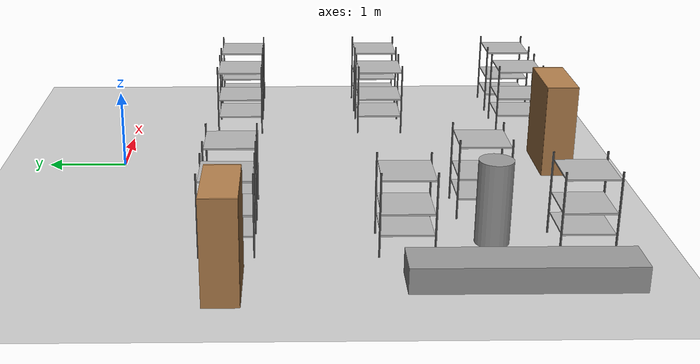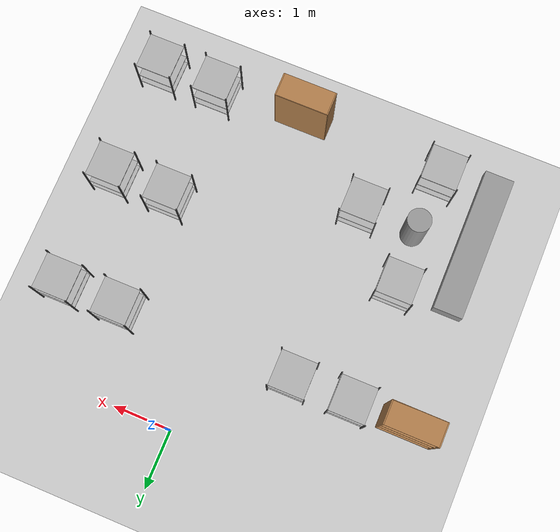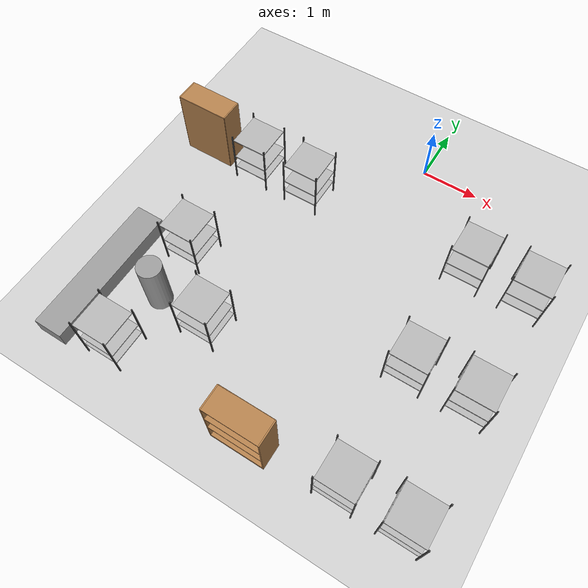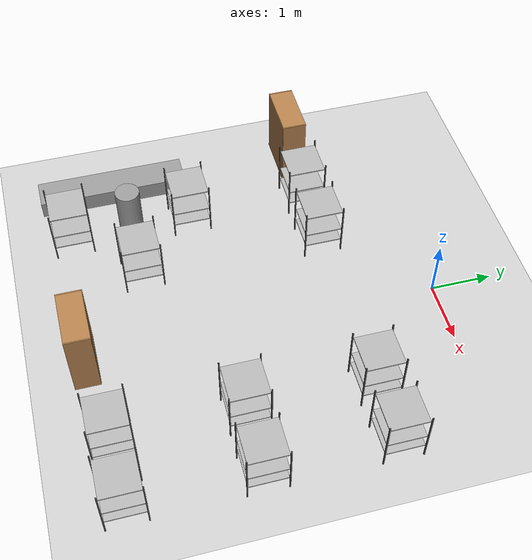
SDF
<sdf version="1.7">
 <world name="default">
  <model name="ground_plane">
   <static>1</static>
   <link name="link">
    <collision name="collision">
     <geometry><plane><normal>0 0 1</normal><size>100 100</size></plane></geometry>
     <surface><friction><ode><mu>100</mu><mu2>50</mu2></ode></friction></surface>
    </collision>
    <visual name="visual">
     <cast_shadows>0</cast_shadows>
     <geometry><plane><normal>0 0 1</normal><size>100 100</size></plane></geometry>
     <material>
      <script><uri>file://media/materials/scripts/gazebo.material</uri><name>Gazebo/Grey</name></script>
     </material>
    </visual>
   </link>
  </model>
  <model name="simple_shelf_20">
   <link name="link">
    <visual name="bottom_shelf_visual">
     <geometry><box><size>0.6 0.6 0.02</size></box></geometry>
     <pose>0 0 0.25 0 -0 0</pose>
     <material><ambient>0.6 0.6 0.6 1</ambient><diffuse>0.7 0.7 0.7 1</diffuse></material>
    </visual>
    <collision name="bottom_shelf_collision">
     <geometry><box><size>0.6 0.6 0.02</size></box></geometry>
     <pose>0 0 0.25 0 -0 0</pose>
    </collision>
    <visual name="middle_shelf_visual">
     <geometry><box><size>0.6 0.6 0.02</size></box></geometry>
     <pose>0 0 0.5 0 -0 0</pose>
     <material><ambient>0.6 0.6 0.6 1</ambient><diffuse>0.7 0.7 0.7 1</diffuse></material>
    </visual>
    <collision name="middle_shelf_collision">
     <geometry><box><size>0.6 0.6 0.02</size></box></geometry>
     <pose>0 0 0.5 0 -0 0</pose>
    </collision>
    <visual name="top_shelf_visual">
     <geometry><box><size>0.6 0.6 0.02</size></box></geometry>
     <pose>0 0 0.9 0 -0 0</pose>
     <material><ambient>0.6 0.6 0.6 1</ambient><diffuse>0.7 0.7 0.7 1</diffuse></material>
    </visual>
    <collision name="top_shelf_collision">
     <geometry><box><size>0.6 0.6 0.02</size></box></geometry>
     <pose>0 0 0.9 0 -0 0</pose>
    </collision>
    <visual name="left_support_visual">
     <geometry><box><size>0.02 0.02 1</size></box></geometry>
     <pose>-0.31 -0.31 0.5 0 -0 0</pose>
     <material><ambient>0.3 0.3 0.3 1</ambient><diffuse>0.3 0.3 0.3 1</diffuse></material>
    </visual>
    <collision name="left_support_collision">
     <geometry><box><size>0.02 0.02 1</size></box></geometry>
     <pose>-0.31 -0.31 0.5 0 -0 0</pose>
    </collision>
    <visual name="right_support_visual">
     <geometry><box><size>0.02 0.02 1</size></box></geometry>
     <pose>0.31 -0.31 0.5 0 -0 0</pose>
     <material><ambient>0.3 0.3 0.3 1</ambient><diffuse>0.3 0.3 0.3 1</diffuse></material>
    </visual>
    <collision name="right_support_collision">
     <geometry><box><size>0.02 0.02 1</size></box></geometry>
     <pose>0.31 -0.31 0.5 0 -0 0</pose>
    </collision>
    <visual name="front_left_support_visual">
     <geometry><box><size>0.02 0.02 1</size></box></geometry>
     <pose>-0.31 0.31 0.5 0 -0 0</pose>
     <material><ambient>0.3 0.3 0.3 1</ambient><diffuse>0.3 0.3 0.3 1</diffuse></material>
    </visual>
    <collision name="front_left_support_collision">
     <geometry><box><size>0.02 0.02 1</size></box></geometry>
     <pose>-0.31 0.31 0.5 0 -0 0</pose>
    </collision>
    <visual name="front_right_support_visual">
     <geometry><box><size>0.02 0.02 1</size></box></geometry>
     <pose>0.31 0.31 0.5 0 -0 0</pose>
     <material><ambient>0.3 0.3 0.3 1</ambient><diffuse>0.3 0.3 0.3 1</diffuse></material>
    </visual>
    <collision name="front_right_support_collision">
     <geometry><box><size>0.02 0.02 1</size></box></geometry>
     <pose>0.31 0.31 0.5 0 -0 0</pose>
    </collision>
    <inertial>
     <inertia><ixx>1</ixx><ixy>0</ixy><ixz>0</ixz><iyy>1</iyy><iyz>0</iyz><izz>1</izz></inertia>
     <mass>1</mass>
    </inertial>
   </link>
   <pose>-2.5 -1.5 -1e-06 -1e-06 -1e-06 0</pose>
  </model>
  <model name="simple_shelf_21">
   <link name="link">
    <visual name="bottom_shelf_visual">
     <geometry><box><size>0.6 0.6 0.02</size></box></geometry>
     <pose>0 0 0.25 0 -0 0</pose>
     <material><ambient>0.6 0.6 0.6 1</ambient><diffuse>0.7 0.7 0.7 1</diffuse></material>
    </visual>
    <collision name="bottom_shelf_collision">
     <geometry><box><size>0.6 0.6 0.02</size></box></geometry>
     <pose>0 0 0.25 0 -0 0</pose>
    </collision>
    <visual name="middle_shelf_visual">
     <geometry><box><size>0.6 0.6 0.02</size></box></geometry>
     <pose>0 0 0.5 0 -0 0</pose>
     <material><ambient>0.6 0.6 0.6 1</ambient><diffuse>0.7 0.7 0.7 1</diffuse></material>
    </visual>
    <collision name="middle_shelf_collision">
     <geometry><box><size>0.6 0.6 0.02</size></box></geometry>
     <pose>0 0 0.5 0 -0 0</pose>
    </collision>
    <visual name="top_shelf_visual">
     <geometry><box><size>0.6 0.6 0.02</size></box></geometry>
     <pose>0 0 0.9 0 -0 0</pose>
     <material><ambient>0.6 0.6 0.6 1</ambient><diffuse>0.7 0.7 0.7 1</diffuse></material>
    </visual>
    <collision name="top_shelf_collision">
     <geometry><box><size>0.6 0.6 0.02</size></box></geometry>
     <pose>0 0 0.9 0 -0 0</pose>
    </collision>
    <visual name="left_support_visual">
     <geometry><box><size>0.02 0.02 1</size></box></geometry>
     <pose>-0.31 -0.31 0.5 0 -0 0</pose>
     <material><ambient>0.3 0.3 0.3 1</ambient><diffuse>0.3 0.3 0.3 1</diffuse></material>
    </visual>
    <collision name="left_support_collision">
     <geometry><box><size>0.02 0.02 1</size></box></geometry>
     <pose>-0.31 -0.31 0.5 0 -0 0</pose>
    </collision>
    <visual name="right_support_visual">
     <geometry><box><size>0.02 0.02 1</size></box></geometry>
     <pose>0.31 -0.31 0.5 0 -0 0</pose>
     <material><ambient>0.3 0.3 0.3 1</ambient><diffuse>0.3 0.3 0.3 1</diffuse></material>
    </visual>
    <collision name="right_support_collision">
     <geometry><box><size>0.02 0.02 1</size></box></geometry>
     <pose>0.31 -0.31 0.5 0 -0 0</pose>
    </collision>
    <visual name="front_left_support_visual">
     <geometry><box><size>0.02 0.02 1</size></box></geometry>
     <pose>-0.31 0.31 0.5 0 -0 0</pose>
     <material><ambient>0.3 0.3 0.3 1</ambient><diffuse>0.3 0.3 0.3 1</diffuse></material>
    </visual>
    <collision name="front_left_support_collision">
     <geometry><box><size>0.02 0.02 1</size></box></geometry>
     <pose>-0.31 0.31 0.5 0 -0 0</pose>
    </collision>
    <visual name="front_right_support_visual">
     <geometry><box><size>0.02 0.02 1</size></box></geometry>
     <pose>0.31 0.31 0.5 0 -0 0</pose>
     <material><ambient>0.3 0.3 0.3 1</ambient><diffuse>0.3 0.3 0.3 1</diffuse></material>
    </visual>
    <collision name="front_right_support_collision">
     <geometry><box><size>0.02 0.02 1</size></box></geometry>
     <pose>0.31 0.31 0.5 0 -0 0</pose>
    </collision>
    <inertial>
     <inertia><ixx>1</ixx><ixy>0</ixy><ixz>0</ixz><iyy>1</iyy><iyz>0</iyz><izz>1</izz></inertia>
     <mass>1</mass>
    </inertial>
   </link>
   <pose>-1.5 -1.5 -1e-06 -1e-06 -1e-06 0</pose>
  </model>
  <model name="simple_shelf_22">
   <link name="link">
    <visual name="bottom_shelf_visual">
     <geometry><box><size>0.6 0.6 0.02</size></box></geometry>
     <pose>0 0 0.25 0 -0 0</pose>
     <material><ambient>0.6 0.6 0.6 1</ambient><diffuse>0.7 0.7 0.7 1</diffuse></material>
    </visual>
    <collision name="bottom_shelf_collision">
     <geometry><box><size>0.6 0.6 0.02</size></box></geometry>
     <pose>0 0 0.25 0 -0 0</pose>
    </collision>
    <visual name="middle_shelf_visual">
     <geometry><box><size>0.6 0.6 0.02</size></box></geometry>
     <pose>0 0 0.5 0 -0 0</pose>
     <material><ambient>0.6 0.6 0.6 1</ambient><diffuse>0.7 0.7 0.7 1</diffuse></material>
    </visual>
    <collision name="middle_shelf_collision">
     <geometry><box><size>0.6 0.6 0.02</size></box></geometry>
     <pose>0 0 0.5 0 -0 0</pose>
    </collision>
    <visual name="top_shelf_visual">
     <geometry><box><size>0.6 0.6 0.02</size></box></geometry>
     <pose>0 0 0.9 0 -0 0</pose>
     <material><ambient>0.6 0.6 0.6 1</ambient><diffuse>0.7 0.7 0.7 1</diffuse></material>
    </visual>
    <collision name="top_shelf_collision">
     <geometry><box><size>0.6 0.6 0.02</size></box></geometry>
     <pose>0 0 0.9 0 -0 0</pose>
    </collision>
    <visual name="left_support_visual">
     <geometry><box><size>0.02 0.02 1</size></box></geometry>
     <pose>-0.31 -0.31 0.5 0 -0 0</pose>
     <material><ambient>0.3 0.3 0.3 1</ambient><diffuse>0.3 0.3 0.3 1</diffuse></material>
    </visual>
    <collision name="left_support_collision">
     <geometry><box><size>0.02 0.02 1</size></box></geometry>
     <pose>-0.31 -0.31 0.5 0 -0 0</pose>
    </collision>
    <visual name="right_support_visual">
     <geometry><box><size>0.02 0.02 1</size></box></geometry>
     <pose>0.31 -0.31 0.5 0 -0 0</pose>
     <material><ambient>0.3 0.3 0.3 1</ambient><diffuse>0.3 0.3 0.3 1</diffuse></material>
    </visual>
    <collision name="right_support_collision">
     <geometry><box><size>0.02 0.02 1</size></box></geometry>
     <pose>0.31 -0.31 0.5 0 -0 0</pose>
    </collision>
    <visual name="front_left_support_visual">
     <geometry><box><size>0.02 0.02 1</size></box></geometry>
     <pose>-0.31 0.31 0.5 0 -0 0</pose>
     <material><ambient>0.3 0.3 0.3 1</ambient><diffuse>0.3 0.3 0.3 1</diffuse></material>
    </visual>
    <collision name="front_left_support_collision">
     <geometry><box><size>0.02 0.02 1</size></box></geometry>
     <pose>-0.31 0.31 0.5 0 -0 0</pose>
    </collision>
    <visual name="front_right_support_visual">
     <geometry><box><size>0.02 0.02 1</size></box></geometry>
     <pose>0.31 0.31 0.5 0 -0 0</pose>
     <material><ambient>0.3 0.3 0.3 1</ambient><diffuse>0.3 0.3 0.3 1</diffuse></material>
    </visual>
    <collision name="front_right_support_collision">
     <geometry><box><size>0.02 0.02 1</size></box></geometry>
     <pose>0.31 0.31 0.5 0 -0 0</pose>
    </collision>
    <inertial>
     <inertia><ixx>1</ixx><ixy>0</ixy><ixz>0</ixz><iyy>1</iyy><iyz>0</iyz><izz>1</izz></inertia>
     <mass>1</mass>
    </inertial>
   </link>
   <pose>1.5 -1.5 -1e-06 -1e-06 -1e-06 0</pose>
  </model>
  <model name="simple_shelf_23">
   <link name="link">
    <visual name="bottom_shelf_visual">
     <geometry><box><size>0.6 0.6 0.02</size></box></geometry>
     <pose>0 0 0.25 0 -0 0</pose>
     <material><ambient>0.6 0.6 0.6 1</ambient><diffuse>0.7 0.7 0.7 1</diffuse></material>
    </visual>
    <collision name="bottom_shelf_collision">
     <geometry><box><size>0.6 0.6 0.02</size></box></geometry>
     <pose>0 0 0.25 0 -0 0</pose>
    </collision>
    <visual name="middle_shelf_visual">
     <geometry><box><size>0.6 0.6 0.02</size></box></geometry>
     <pose>0 0 0.5 0 -0 0</pose>
     <material><ambient>0.6 0.6 0.6 1</ambient><diffuse>0.7 0.7 0.7 1</diffuse></material>
    </visual>
    <collision name="middle_shelf_collision">
     <geometry><box><size>0.6 0.6 0.02</size></box></geometry>
     <pose>0 0 0.5 0 -0 0</pose>
    </collision>
    <visual name="top_shelf_visual">
     <geometry><box><size>0.6 0.6 0.02</size></box></geometry>
     <pose>0 0 0.9 0 -0 0</pose>
     <material><ambient>0.6 0.6 0.6 1</ambient><diffuse>0.7 0.7 0.7 1</diffuse></material>
    </visual>
    <collision name="top_shelf_collision">
     <geometry><box><size>0.6 0.6 0.02</size></box></geometry>
     <pose>0 0 0.9 0 -0 0</pose>
    </collision>
    <visual name="left_support_visual">
     <geometry><box><size>0.02 0.02 1</size></box></geometry>
     <pose>-0.31 -0.31 0.5 0 -0 0</pose>
     <material><ambient>0.3 0.3 0.3 1</ambient><diffuse>0.3 0.3 0.3 1</diffuse></material>
    </visual>
    <collision name="left_support_collision">
     <geometry><box><size>0.02 0.02 1</size></box></geometry>
     <pose>-0.31 -0.31 0.5 0 -0 0</pose>
    </collision>
    <visual name="right_support_visual">
     <geometry><box><size>0.02 0.02 1</size></box></geometry>
     <pose>0.31 -0.31 0.5 0 -0 0</pose>
     <material><ambient>0.3 0.3 0.3 1</ambient><diffuse>0.3 0.3 0.3 1</diffuse></material>
    </visual>
    <collision name="right_support_collision">
     <geometry><box><size>0.02 0.02 1</size></box></geometry>
     <pose>0.31 -0.31 0.5 0 -0 0</pose>
    </collision>
    <visual name="front_left_support_visual">
     <geometry><box><size>0.02 0.02 1</size></box></geometry>
     <pose>-0.31 0.31 0.5 0 -0 0</pose>
     <material><ambient>0.3 0.3 0.3 1</ambient><diffuse>0.3 0.3 0.3 1</diffuse></material>
    </visual>
    <collision name="front_left_support_collision">
     <geometry><box><size>0.02 0.02 1</size></box></geometry>
     <pose>-0.31 0.31 0.5 0 -0 0</pose>
    </collision>
    <visual name="front_right_support_visual">
     <geometry><box><size>0.02 0.02 1</size></box></geometry>
     <pose>0.31 0.31 0.5 0 -0 0</pose>
     <material><ambient>0.3 0.3 0.3 1</ambient><diffuse>0.3 0.3 0.3 1</diffuse></material>
    </visual>
    <collision name="front_right_support_collision">
     <geometry><box><size>0.02 0.02 1</size></box></geometry>
     <pose>0.31 0.31 0.5 0 -0 0</pose>
    </collision>
    <inertial>
     <inertia><ixx>1</ixx><ixy>0</ixy><ixz>0</ixz><iyy>1</iyy><iyz>0</iyz><izz>1</izz></inertia>
     <mass>1</mass>
    </inertial>
   </link>
   <pose>2.5 -1.5 -1e-06 -1e-06 -1e-06 0</pose>
  </model>
  <model name="unit_cylinder">
   <link name="link">
    <inertial>
     <mass>1</mass>
     <inertia><ixx>0.145833</ixx><ixy>0</ixy><ixz>0</ixz><iyy>0.145833</iyy><iyz>0</iyz><izz>0.125</izz></inertia>
    </inertial>
    <visual name="visual">
     <geometry><cylinder><radius>0.2</radius><length>1</length></cylinder></geometry>
     <material>
      <script><name>Gazebo/Grey</name><uri>file://media/materials/scripts/gazebo.material</uri></script>
      <shader type="pixel"><normal_map>__default__</normal_map></shader>
      <ambient>0.3 0.3 0.3 1</ambient>
      <diffuse>0.7 0.7 0.7 1</diffuse>
      <specular>0.01 0.01 0.01 1</specular>
      <emissive>0 0 0 1</emissive>
     </material>
    </visual>
    <collision name="collision">
     <geometry><cylinder><radius>0.5</radius><length>1</length></cylinder></geometry>
     <surface>
      <friction>
       <ode><mu>1</mu><mu2>1</mu2><fdir1>0 0 0</fdir1><slip1>0</slip1><slip2>0</slip2></ode>
       <torsional>
        <coefficient>1</coefficient>
        <patch_radius>0</patch_radius>
        <surface_radius>0</surface_radius>
        <use_patch_radius>1</use_patch_radius>
        <ode><slip>0</slip></ode>
       </torsional>
      </friction>
      <bounce><restitution_coefficient>0</restitution_coefficient><threshold>1e+06</threshold></bounce>
      <contact>
       <collide_without_contact>0</collide_without_contact>
       <collide_without_contact_bitmask>1</collide_without_contact_bitmask>
       <collide_bitmask>1</collide_bitmask>
       <ode>
        <soft_cfm>0</soft_cfm>
        <soft_erp>0.2</soft_erp>
        <kp>1e+13</kp>
        <kd>1</kd>
        <max_vel>0.01</max_vel>
        <min_depth>0</min_depth>
       </ode>
       <bullet>
        <split_impulse>1</split_impulse>
        <split_impulse_penetration_threshold>-0.01</split_impulse_penetration_threshold>
        <soft_cfm>0</soft_cfm>
        <soft_erp>0.2</soft_erp>
        <kp>1e+13</kp>
        <kd>1</kd>
       </bullet>
      </contact>
     </surface>
    </collision>
   </link>
   <static>0</static>
   <pose>-2.43274 -4.50064 0.499991 -0 -0 -0.006565</pose>
  </model>
  <model name="simple_shelf_19">
   <link name="link">
    <visual name="bottom_shelf_visual">
     <geometry><box><size>0.6 0.6 0.02</size></box></geometry>
     <pose>0 0 0.25 0 -0 0</pose>
     <material><ambient>0.6 0.6 0.6 1</ambient><diffuse>0.7 0.7 0.7 1</diffuse></material>
    </visual>
    <collision name="bottom_shelf_collision">
     <geometry><box><size>0.6 0.6 0.02</size></box></geometry>
     <pose>0 0 0.25 0 -0 0</pose>
    </collision>
    <visual name="middle_shelf_visual">
     <geometry><box><size>0.6 0.6 0.02</size></box></geometry>
     <pose>0 0 0.5 0 -0 0</pose>
     <material><ambient>0.6 0.6 0.6 1</ambient><diffuse>0.7 0.7 0.7 1</diffuse></material>
    </visual>
    <collision name="middle_shelf_collision">
     <geometry><box><size>0.6 0.6 0.02</size></box></geometry>
     <pose>0 0 0.5 0 -0 0</pose>
    </collision>
    <visual name="top_shelf_visual">
     <geometry><box><size>0.6 0.6 0.02</size></box></geometry>
     <pose>0 0 0.9 0 -0 0</pose>
     <material><ambient>0.6 0.6 0.6 1</ambient><diffuse>0.7 0.7 0.7 1</diffuse></material>
    </visual>
    <collision name="top_shelf_collision">
     <geometry><box><size>0.6 0.6 0.02</size></box></geometry>
     <pose>0 0 0.9 0 -0 0</pose>
    </collision>
    <visual name="left_support_visual">
     <geometry><box><size>0.02 0.02 1</size></box></geometry>
     <pose>-0.31 -0.31 0.5 0 -0 0</pose>
     <material><ambient>0.3 0.3 0.3 1</ambient><diffuse>0.3 0.3 0.3 1</diffuse></material>
    </visual>
    <collision name="left_support_collision">
     <geometry><box><size>0.02 0.02 1</size></box></geometry>
     <pose>-0.31 -0.31 0.5 0 -0 0</pose>
    </collision>
    <visual name="right_support_visual">
     <geometry><box><size>0.02 0.02 1</size></box></geometry>
     <pose>0.31 -0.31 0.5 0 -0 0</pose>
     <material><ambient>0.3 0.3 0.3 1</ambient><diffuse>0.3 0.3 0.3 1</diffuse></material>
    </visual>
    <collision name="right_support_collision">
     <geometry><box><size>0.02 0.02 1</size></box></geometry>
     <pose>0.31 -0.31 0.5 0 -0 0</pose>
    </collision>
    <visual name="front_left_support_visual">
     <geometry><box><size>0.02 0.02 1</size></box></geometry>
     <pose>-0.31 0.31 0.5 0 -0 0</pose>
     <material><ambient>0.3 0.3 0.3 1</ambient><diffuse>0.3 0.3 0.3 1</diffuse></material>
    </visual>
    <collision name="front_left_support_collision">
     <geometry><box><size>0.02 0.02 1</size></box></geometry>
     <pose>-0.31 0.31 0.5 0 -0 0</pose>
    </collision>
    <visual name="front_right_support_visual">
     <geometry><box><size>0.02 0.02 1</size></box></geometry>
     <pose>0.31 0.31 0.5 0 -0 0</pose>
     <material><ambient>0.3 0.3 0.3 1</ambient><diffuse>0.3 0.3 0.3 1</diffuse></material>
    </visual>
    <collision name="front_right_support_collision">
     <geometry><box><size>0.02 0.02 1</size></box></geometry>
     <pose>0.31 0.31 0.5 0 -0 0</pose>
    </collision>
    <inertial>
     <inertia><ixx>1</ixx><ixy>0</ixy><ixz>0</ixz><iyy>1</iyy><iyz>0</iyz><izz>1</izz></inertia>
     <mass>1</mass>
    </inertial>
   </link>
   <pose>-2.5 -5.5 -1e-06 -1e-06 -1e-06 0</pose>
  </model>
  <model name="simple_shelf_24">
   <link name="link">
    <visual name="bottom_shelf_visual">
     <geometry><box><size>0.6 0.6 0.02</size></box></geometry>
     <pose>0 0 0.25 0 -0 0</pose>
     <material><ambient>0.6 0.6 0.6 1</ambient><diffuse>0.7 0.7 0.7 1</diffuse></material>
    </visual>
    <collision name="bottom_shelf_collision">
     <geometry><box><size>0.6 0.6 0.02</size></box></geometry>
     <pose>0 0 0.25 0 -0 0</pose>
    </collision>
    <visual name="middle_shelf_visual">
     <geometry><box><size>0.6 0.6 0.02</size></box></geometry>
     <pose>0 0 0.5 0 -0 0</pose>
     <material><ambient>0.6 0.6 0.6 1</ambient><diffuse>0.7 0.7 0.7 1</diffuse></material>
    </visual>
    <collision name="middle_shelf_collision">
     <geometry><box><size>0.6 0.6 0.02</size></box></geometry>
     <pose>0 0 0.5 0 -0 0</pose>
    </collision>
    <visual name="top_shelf_visual">
     <geometry><box><size>0.6 0.6 0.02</size></box></geometry>
     <pose>0 0 0.9 0 -0 0</pose>
     <material><ambient>0.6 0.6 0.6 1</ambient><diffuse>0.7 0.7 0.7 1</diffuse></material>
    </visual>
    <collision name="top_shelf_collision">
     <geometry><box><size>0.6 0.6 0.02</size></box></geometry>
     <pose>0 0 0.9 0 -0 0</pose>
    </collision>
    <visual name="left_support_visual">
     <geometry><box><size>0.02 0.02 1</size></box></geometry>
     <pose>-0.31 -0.31 0.5 0 -0 0</pose>
     <material><ambient>0.3 0.3 0.3 1</ambient><diffuse>0.3 0.3 0.3 1</diffuse></material>
    </visual>
    <collision name="left_support_collision">
     <geometry><box><size>0.02 0.02 1</size></box></geometry>
     <pose>-0.31 -0.31 0.5 0 -0 0</pose>
    </collision>
    <visual name="right_support_visual">
     <geometry><box><size>0.02 0.02 1</size></box></geometry>
     <pose>0.31 -0.31 0.5 0 -0 0</pose>
     <material><ambient>0.3 0.3 0.3 1</ambient><diffuse>0.3 0.3 0.3 1</diffuse></material>
    </visual>
    <collision name="right_support_collision">
     <geometry><box><size>0.02 0.02 1</size></box></geometry>
     <pose>0.31 -0.31 0.5 0 -0 0</pose>
    </collision>
    <visual name="front_left_support_visual">
     <geometry><box><size>0.02 0.02 1</size></box></geometry>
     <pose>-0.31 0.31 0.5 0 -0 0</pose>
     <material><ambient>0.3 0.3 0.3 1</ambient><diffuse>0.3 0.3 0.3 1</diffuse></material>
    </visual>
    <collision name="front_left_support_collision">
     <geometry><box><size>0.02 0.02 1</size></box></geometry>
     <pose>-0.31 0.31 0.5 0 -0 0</pose>
    </collision>
    <visual name="front_right_support_visual">
     <geometry><box><size>0.02 0.02 1</size></box></geometry>
     <pose>0.31 0.31 0.5 0 -0 0</pose>
     <material><ambient>0.3 0.3 0.3 1</ambient><diffuse>0.3 0.3 0.3 1</diffuse></material>
    </visual>
    <collision name="front_right_support_collision">
     <geometry><box><size>0.02 0.02 1</size></box></geometry>
     <pose>0.31 0.31 0.5 0 -0 0</pose>
    </collision>
    <inertial>
     <inertia><ixx>1</ixx><ixy>0</ixy><ixz>0</ixz><iyy>1</iyy><iyz>0</iyz><izz>1</izz></inertia>
     <mass>1</mass>
    </inertial>
   </link>
   <pose>-2.5 -3.5 -1e-06 -1e-06 -1e-06 0</pose>
  </model>
  <model name="simple_shelf_25">
   <link name="link">
    <visual name="bottom_shelf_visual">
     <geometry><box><size>0.6 0.6 0.02</size></box></geometry>
     <pose>0 0 0.25 0 -0 0</pose>
     <material><ambient>0.6 0.6 0.6 1</ambient><diffuse>0.7 0.7 0.7 1</diffuse></material>
    </visual>
    <collision name="bottom_shelf_collision">
     <geometry><box><size>0.6 0.6 0.02</size></box></geometry>
     <pose>0 0 0.25 0 -0 0</pose>
    </collision>
    <visual name="middle_shelf_visual">
     <geometry><box><size>0.6 0.6 0.02</size></box></geometry>
     <pose>0 0 0.5 0 -0 0</pose>
     <material><ambient>0.6 0.6 0.6 1</ambient><diffuse>0.7 0.7 0.7 1</diffuse></material>
    </visual>
    <collision name="middle_shelf_collision">
     <geometry><box><size>0.6 0.6 0.02</size></box></geometry>
     <pose>0 0 0.5 0 -0 0</pose>
    </collision>
    <visual name="top_shelf_visual">
     <geometry><box><size>0.6 0.6 0.02</size></box></geometry>
     <pose>0 0 0.9 0 -0 0</pose>
     <material><ambient>0.6 0.6 0.6 1</ambient><diffuse>0.7 0.7 0.7 1</diffuse></material>
    </visual>
    <collision name="top_shelf_collision">
     <geometry><box><size>0.6 0.6 0.02</size></box></geometry>
     <pose>0 0 0.9 0 -0 0</pose>
    </collision>
    <visual name="left_support_visual">
     <geometry><box><size>0.02 0.02 1</size></box></geometry>
     <pose>-0.31 -0.31 0.5 0 -0 0</pose>
     <material><ambient>0.3 0.3 0.3 1</ambient><diffuse>0.3 0.3 0.3 1</diffuse></material>
    </visual>
    <collision name="left_support_collision">
     <geometry><box><size>0.02 0.02 1</size></box></geometry>
     <pose>-0.31 -0.31 0.5 0 -0 0</pose>
    </collision>
    <visual name="right_support_visual">
     <geometry><box><size>0.02 0.02 1</size></box></geometry>
     <pose>0.31 -0.31 0.5 0 -0 0</pose>
     <material><ambient>0.3 0.3 0.3 1</ambient><diffuse>0.3 0.3 0.3 1</diffuse></material>
    </visual>
    <collision name="right_support_collision">
     <geometry><box><size>0.02 0.02 1</size></box></geometry>
     <pose>0.31 -0.31 0.5 0 -0 0</pose>
    </collision>
    <visual name="front_left_support_visual">
     <geometry><box><size>0.02 0.02 1</size></box></geometry>
     <pose>-0.31 0.31 0.5 0 -0 0</pose>
     <material><ambient>0.3 0.3 0.3 1</ambient><diffuse>0.3 0.3 0.3 1</diffuse></material>
    </visual>
    <collision name="front_left_support_collision">
     <geometry><box><size>0.02 0.02 1</size></box></geometry>
     <pose>-0.31 0.31 0.5 0 -0 0</pose>
    </collision>
    <visual name="front_right_support_visual">
     <geometry><box><size>0.02 0.02 1</size></box></geometry>
     <pose>0.31 0.31 0.5 0 -0 0</pose>
     <material><ambient>0.3 0.3 0.3 1</ambient><diffuse>0.3 0.3 0.3 1</diffuse></material>
    </visual>
    <collision name="front_right_support_collision">
     <geometry><box><size>0.02 0.02 1</size></box></geometry>
     <pose>0.31 0.31 0.5 0 -0 0</pose>
    </collision>
    <inertial>
     <inertia><ixx>1</ixx><ixy>0</ixy><ixz>0</ixz><iyy>1</iyy><iyz>0</iyz><izz>1</izz></inertia>
     <mass>1</mass>
    </inertial>
   </link>
   <pose>-1.5 -4.5 -1e-06 -1e-06 -1e-06 0</pose>
  </model>
  <model name="simple_shelf_26">
   <link name="link">
    <visual name="bottom_shelf_visual">
     <geometry><box><size>0.6 0.6 0.02</size></box></geometry>
     <pose>0 0 0.25 0 -0 0</pose>
     <material><ambient>0.6 0.6 0.6 1</ambient><diffuse>0.7 0.7 0.7 1</diffuse></material>
    </visual>
    <collision name="bottom_shelf_collision">
     <geometry><box><size>0.6 0.6 0.02</size></box></geometry>
     <pose>0 0 0.25 0 -0 0</pose>
    </collision>
    <visual name="middle_shelf_visual">
     <geometry><box><size>0.6 0.6 0.02</size></box></geometry>
     <pose>0 0 0.5 0 -0 0</pose>
     <material><ambient>0.6 0.6 0.6 1</ambient><diffuse>0.7 0.7 0.7 1</diffuse></material>
    </visual>
    <collision name="middle_shelf_collision">
     <geometry><box><size>0.6 0.6 0.02</size></box></geometry>
     <pose>0 0 0.5 0 -0 0</pose>
    </collision>
    <visual name="top_shelf_visual">
     <geometry><box><size>0.6 0.6 0.02</size></box></geometry>
     <pose>0 0 0.9 0 -0 0</pose>
     <material><ambient>0.6 0.6 0.6 1</ambient><diffuse>0.7 0.7 0.7 1</diffuse></material>
    </visual>
    <collision name="top_shelf_collision">
     <geometry><box><size>0.6 0.6 0.02</size></box></geometry>
     <pose>0 0 0.9 0 -0 0</pose>
    </collision>
    <visual name="left_support_visual">
     <geometry><box><size>0.02 0.02 1</size></box></geometry>
     <pose>-0.31 -0.31 0.5 0 -0 0</pose>
     <material><ambient>0.3 0.3 0.3 1</ambient><diffuse>0.3 0.3 0.3 1</diffuse></material>
    </visual>
    <collision name="left_support_collision">
     <geometry><box><size>0.02 0.02 1</size></box></geometry>
     <pose>-0.31 -0.31 0.5 0 -0 0</pose>
    </collision>
    <visual name="right_support_visual">
     <geometry><box><size>0.02 0.02 1</size></box></geometry>
     <pose>0.31 -0.31 0.5 0 -0 0</pose>
     <material><ambient>0.3 0.3 0.3 1</ambient><diffuse>0.3 0.3 0.3 1</diffuse></material>
    </visual>
    <collision name="right_support_collision">
     <geometry><box><size>0.02 0.02 1</size></box></geometry>
     <pose>0.31 -0.31 0.5 0 -0 0</pose>
    </collision>
    <visual name="front_left_support_visual">
     <geometry><box><size>0.02 0.02 1</size></box></geometry>
     <pose>-0.31 0.31 0.5 0 -0 0</pose>
     <material><ambient>0.3 0.3 0.3 1</ambient><diffuse>0.3 0.3 0.3 1</diffuse></material>
    </visual>
    <collision name="front_left_support_collision">
     <geometry><box><size>0.02 0.02 1</size></box></geometry>
     <pose>-0.31 0.31 0.5 0 -0 0</pose>
    </collision>
    <visual name="front_right_support_visual">
     <geometry><box><size>0.02 0.02 1</size></box></geometry>
     <pose>0.31 0.31 0.5 0 -0 0</pose>
     <material><ambient>0.3 0.3 0.3 1</ambient><diffuse>0.3 0.3 0.3 1</diffuse></material>
    </visual>
    <collision name="front_right_support_collision">
     <geometry><box><size>0.02 0.02 1</size></box></geometry>
     <pose>0.31 0.31 0.5 0 -0 0</pose>
    </collision>
    <inertial>
     <inertia><ixx>1</ixx><ixy>0</ixy><ixz>0</ixz><iyy>1</iyy><iyz>0</iyz><izz>1</izz></inertia>
     <mass>1</mass>
    </inertial>
   </link>
   <pose>1.5 -3.5 -1e-06 -1e-06 -1e-06 0</pose>
  </model>
  <model name="simple_shelf_27">
   <link name="link">
    <visual name="bottom_shelf_visual">
     <geometry><box><size>0.6 0.6 0.02</size></box></geometry>
     <pose>0 0 0.25 0 -0 0</pose>
     <material><ambient>0.6 0.6 0.6 1</ambient><diffuse>0.7 0.7 0.7 1</diffuse></material>
    </visual>
    <collision name="bottom_shelf_collision">
     <geometry><box><size>0.6 0.6 0.02</size></box></geometry>
     <pose>0 0 0.25 0 -0 0</pose>
    </collision>
    <visual name="middle_shelf_visual">
     <geometry><box><size>0.6 0.6 0.02</size></box></geometry>
     <pose>0 0 0.5 0 -0 0</pose>
     <material><ambient>0.6 0.6 0.6 1</ambient><diffuse>0.7 0.7 0.7 1</diffuse></material>
    </visual>
    <collision name="middle_shelf_collision">
     <geometry><box><size>0.6 0.6 0.02</size></box></geometry>
     <pose>0 0 0.5 0 -0 0</pose>
    </collision>
    <visual name="top_shelf_visual">
     <geometry><box><size>0.6 0.6 0.02</size></box></geometry>
     <pose>0 0 0.9 0 -0 0</pose>
     <material><ambient>0.6 0.6 0.6 1</ambient><diffuse>0.7 0.7 0.7 1</diffuse></material>
    </visual>
    <collision name="top_shelf_collision">
     <geometry><box><size>0.6 0.6 0.02</size></box></geometry>
     <pose>0 0 0.9 0 -0 0</pose>
    </collision>
    <visual name="left_support_visual">
     <geometry><box><size>0.02 0.02 1</size></box></geometry>
     <pose>-0.31 -0.31 0.5 0 -0 0</pose>
     <material><ambient>0.3 0.3 0.3 1</ambient><diffuse>0.3 0.3 0.3 1</diffuse></material>
    </visual>
    <collision name="left_support_collision">
     <geometry><box><size>0.02 0.02 1</size></box></geometry>
     <pose>-0.31 -0.31 0.5 0 -0 0</pose>
    </collision>
    <visual name="right_support_visual">
     <geometry><box><size>0.02 0.02 1</size></box></geometry>
     <pose>0.31 -0.31 0.5 0 -0 0</pose>
     <material><ambient>0.3 0.3 0.3 1</ambient><diffuse>0.3 0.3 0.3 1</diffuse></material>
    </visual>
    <collision name="right_support_collision">
     <geometry><box><size>0.02 0.02 1</size></box></geometry>
     <pose>0.31 -0.31 0.5 0 -0 0</pose>
    </collision>
    <visual name="front_left_support_visual">
     <geometry><box><size>0.02 0.02 1</size></box></geometry>
     <pose>-0.31 0.31 0.5 0 -0 0</pose>
     <material><ambient>0.3 0.3 0.3 1</ambient><diffuse>0.3 0.3 0.3 1</diffuse></material>
    </visual>
    <collision name="front_left_support_collision">
     <geometry><box><size>0.02 0.02 1</size></box></geometry>
     <pose>-0.31 0.31 0.5 0 -0 0</pose>
    </collision>
    <visual name="front_right_support_visual">
     <geometry><box><size>0.02 0.02 1</size></box></geometry>
     <pose>0.31 0.31 0.5 0 -0 0</pose>
     <material><ambient>0.3 0.3 0.3 1</ambient><diffuse>0.3 0.3 0.3 1</diffuse></material>
    </visual>
    <collision name="front_right_support_collision">
     <geometry><box><size>0.02 0.02 1</size></box></geometry>
     <pose>0.31 0.31 0.5 0 -0 0</pose>
    </collision>
    <inertial>
     <inertia><ixx>1</ixx><ixy>0</ixy><ixz>0</ixz><iyy>1</iyy><iyz>0</iyz><izz>1</izz></inertia>
     <mass>1</mass>
    </inertial>
   </link>
   <pose>1.5 -5.5 -1e-06 -1e-06 -1e-06 0</pose>
  </model>
  <model name="simple_shelf_28">
   <link name="link">
    <visual name="bottom_shelf_visual">
     <geometry><box><size>0.6 0.6 0.02</size></box></geometry>
     <pose>0 0 0.25 0 -0 0</pose>
     <material><ambient>0.6 0.6 0.6 1</ambient><diffuse>0.7 0.7 0.7 1</diffuse></material>
    </visual>
    <collision name="bottom_shelf_collision">
     <geometry><box><size>0.6 0.6 0.02</size></box></geometry>
     <pose>0 0 0.25 0 -0 0</pose>
    </collision>
    <visual name="middle_shelf_visual">
     <geometry><box><size>0.6 0.6 0.02</size></box></geometry>
     <pose>0 0 0.5 0 -0 0</pose>
     <material><ambient>0.6 0.6 0.6 1</ambient><diffuse>0.7 0.7 0.7 1</diffuse></material>
    </visual>
    <collision name="middle_shelf_collision">
     <geometry><box><size>0.6 0.6 0.02</size></box></geometry>
     <pose>0 0 0.5 0 -0 0</pose>
    </collision>
    <visual name="top_shelf_visual">
     <geometry><box><size>0.6 0.6 0.02</size></box></geometry>
     <pose>0 0 0.9 0 -0 0</pose>
     <material><ambient>0.6 0.6 0.6 1</ambient><diffuse>0.7 0.7 0.7 1</diffuse></material>
    </visual>
    <collision name="top_shelf_collision">
     <geometry><box><size>0.6 0.6 0.02</size></box></geometry>
     <pose>0 0 0.9 0 -0 0</pose>
    </collision>
    <visual name="left_support_visual">
     <geometry><box><size>0.02 0.02 1</size></box></geometry>
     <pose>-0.31 -0.31 0.5 0 -0 0</pose>
     <material><ambient>0.3 0.3 0.3 1</ambient><diffuse>0.3 0.3 0.3 1</diffuse></material>
    </visual>
    <collision name="left_support_collision">
     <geometry><box><size>0.02 0.02 1</size></box></geometry>
     <pose>-0.31 -0.31 0.5 0 -0 0</pose>
    </collision>
    <visual name="right_support_visual">
     <geometry><box><size>0.02 0.02 1</size></box></geometry>
     <pose>0.31 -0.31 0.5 0 -0 0</pose>
     <material><ambient>0.3 0.3 0.3 1</ambient><diffuse>0.3 0.3 0.3 1</diffuse></material>
    </visual>
    <collision name="right_support_collision">
     <geometry><box><size>0.02 0.02 1</size></box></geometry>
     <pose>0.31 -0.31 0.5 0 -0 0</pose>
    </collision>
    <visual name="front_left_support_visual">
     <geometry><box><size>0.02 0.02 1</size></box></geometry>
     <pose>-0.31 0.31 0.5 0 -0 0</pose>
     <material><ambient>0.3 0.3 0.3 1</ambient><diffuse>0.3 0.3 0.3 1</diffuse></material>
    </visual>
    <collision name="front_left_support_collision">
     <geometry><box><size>0.02 0.02 1</size></box></geometry>
     <pose>-0.31 0.31 0.5 0 -0 0</pose>
    </collision>
    <visual name="front_right_support_visual">
     <geometry><box><size>0.02 0.02 1</size></box></geometry>
     <pose>0.31 0.31 0.5 0 -0 0</pose>
     <material><ambient>0.3 0.3 0.3 1</ambient><diffuse>0.3 0.3 0.3 1</diffuse></material>
    </visual>
    <collision name="front_right_support_collision">
     <geometry><box><size>0.02 0.02 1</size></box></geometry>
     <pose>0.31 0.31 0.5 0 -0 0</pose>
    </collision>
    <inertial>
     <inertia><ixx>1</ixx><ixy>0</ixy><ixz>0</ixz><iyy>1</iyy><iyz>0</iyz><izz>1</izz></inertia>
     <mass>1</mass>
    </inertial>
   </link>
   <pose>2.5 -3.5 -1e-06 -1e-06 -1e-06 0</pose>
  </model>
  <model name="simple_shelf_29">
   <link name="link">
    <visual name="bottom_shelf_visual">
     <geometry><box><size>0.6 0.6 0.02</size></box></geometry>
     <pose>0 0 0.25 0 -0 0</pose>
     <material><ambient>0.6 0.6 0.6 1</ambient><diffuse>0.7 0.7 0.7 1</diffuse></material>
    </visual>
    <collision name="bottom_shelf_collision">
     <geometry><box><size>0.6 0.6 0.02</size></box></geometry>
     <pose>0 0 0.25 0 -0 0</pose>
    </collision>
    <visual name="middle_shelf_visual">
     <geometry><box><size>0.6 0.6 0.02</size></box></geometry>
     <pose>0 0 0.5 0 -0 0</pose>
     <material><ambient>0.6 0.6 0.6 1</ambient><diffuse>0.7 0.7 0.7 1</diffuse></material>
    </visual>
    <collision name="middle_shelf_collision">
     <geometry><box><size>0.6 0.6 0.02</size></box></geometry>
     <pose>0 0 0.5 0 -0 0</pose>
    </collision>
    <visual name="top_shelf_visual">
     <geometry><box><size>0.6 0.6 0.02</size></box></geometry>
     <pose>0 0 0.9 0 -0 0</pose>
     <material><ambient>0.6 0.6 0.6 1</ambient><diffuse>0.7 0.7 0.7 1</diffuse></material>
    </visual>
    <collision name="top_shelf_collision">
     <geometry><box><size>0.6 0.6 0.02</size></box></geometry>
     <pose>0 0 0.9 0 -0 0</pose>
    </collision>
    <visual name="left_support_visual">
     <geometry><box><size>0.02 0.02 1</size></box></geometry>
     <pose>-0.31 -0.31 0.5 0 -0 0</pose>
     <material><ambient>0.3 0.3 0.3 1</ambient><diffuse>0.3 0.3 0.3 1</diffuse></material>
    </visual>
    <collision name="left_support_collision">
     <geometry><box><size>0.02 0.02 1</size></box></geometry>
     <pose>-0.31 -0.31 0.5 0 -0 0</pose>
    </collision>
    <visual name="right_support_visual">
     <geometry><box><size>0.02 0.02 1</size></box></geometry>
     <pose>0.31 -0.31 0.5 0 -0 0</pose>
     <material><ambient>0.3 0.3 0.3 1</ambient><diffuse>0.3 0.3 0.3 1</diffuse></material>
    </visual>
    <collision name="right_support_collision">
     <geometry><box><size>0.02 0.02 1</size></box></geometry>
     <pose>0.31 -0.31 0.5 0 -0 0</pose>
    </collision>
    <visual name="front_left_support_visual">
     <geometry><box><size>0.02 0.02 1</size></box></geometry>
     <pose>-0.31 0.31 0.5 0 -0 0</pose>
     <material><ambient>0.3 0.3 0.3 1</ambient><diffuse>0.3 0.3 0.3 1</diffuse></material>
    </visual>
    <collision name="front_left_support_collision">
     <geometry><box><size>0.02 0.02 1</size></box></geometry>
     <pose>-0.31 0.31 0.5 0 -0 0</pose>
    </collision>
    <visual name="front_right_support_visual">
     <geometry><box><size>0.02 0.02 1</size></box></geometry>
     <pose>0.31 0.31 0.5 0 -0 0</pose>
     <material><ambient>0.3 0.3 0.3 1</ambient><diffuse>0.3 0.3 0.3 1</diffuse></material>
    </visual>
    <collision name="front_right_support_collision">
     <geometry><box><size>0.02 0.02 1</size></box></geometry>
     <pose>0.31 0.31 0.5 0 -0 0</pose>
    </collision>
    <inertial>
     <inertia><ixx>1</ixx><ixy>0</ixy><ixz>0</ixz><iyy>1</iyy><iyz>0</iyz><izz>1</izz></inertia>
     <mass>1</mass>
    </inertial>
   </link>
   <pose>2.5 -5.5 -1e-06 -1e-06 -1e-06 0</pose>
  </model>
  <model name="conveyor_sub">
   <link name="link_0">
    <inertial>
     <mass>1</mass>
     <inertia>
      <ixx>0.166667</ixx>
      <ixy>0</ixy>
      <ixz>0</ixz>
      <iyy>0.166667</iyy>
      <iyz>0</iyz>
      <izz>0.166667</izz>
     </inertia>
    </inertial>
    <pose>0.067208 -0.145042 -0.04 0 -0 0</pose>
    <visual name="visual">
     <geometry><box><size>0.5 2.5 0.3</size></box></geometry>
     <material>
      <lighting>1</lighting>
      <script><uri>file://media/materials/scripts/gazebo.material</uri><name>Gazebo/Grey</name></script>
      <shader type="pixel"><normal_map>__default__</normal_map></shader>
      <ambient>0.3 0.3 0.3 1</ambient>
      <diffuse>0.7 0.7 0.7 1</diffuse>
      <specular>0.01 0.01 0.01 1</specular>
      <emissive>0 0 0 1</emissive>
     </material>
    </visual>
    <collision name="collision">
     <geometry><box><size>0.5 2.5 0.3</size></box></geometry>
     <surface>
      <friction>
       <ode><mu>1</mu><mu2>1</mu2><fdir1>0 0 0</fdir1><slip1>0</slip1><slip2>0</slip2></ode>
       <torsional>
        <coefficient>1</coefficient>
        <patch_radius>0</patch_radius>
        <surface_radius>0</surface_radius>
        <use_patch_radius>1</use_patch_radius>
        <ode><slip>0</slip></ode>
       </torsional>
      </friction>
      <bounce><restitution_coefficient>0</restitution_coefficient><threshold>1e+06</threshold></bounce>
      <contact>
       <collide_without_contact>0</collide_without_contact>
       <collide_without_contact_bitmask>1</collide_without_contact_bitmask>
       <collide_bitmask>1</collide_bitmask>
       <ode>
        <soft_cfm>0</soft_cfm>
        <soft_erp>0.2</soft_erp>
        <kp>1e+13</kp>
        <kd>1</kd>
        <max_vel>0.01</max_vel>
        <min_depth>0</min_depth>
       </ode>
       <bullet>
        <split_impulse>1</split_impulse>
        <split_impulse_penetration_threshold>-0.01</split_impulse_penetration_threshold>
        <soft_cfm>0</soft_cfm>
        <soft_erp>0.2</soft_erp>
        <kp>1e+13</kp>
        <kd>1</kd>
       </bullet>
      </contact>
     </surface>
    </collision>
   </link>
   <static>0</static>
   <pose>-3.50006 -4.52986 0.19 0 0 -0.000201</pose>
  </model>
  <model name="bookshelf">
   <static>1</static>
   <link name="link">
    <inertial><mass>1</mass></inertial>
    <collision name="back">
     <pose>0 0.005 0.6 0 -0 0</pose>
     <geometry><box><size>0.9 0.01 1.2</size></box></geometry>
    </collision>
    <visual name="visual1">
     <pose>0 0.005 0.6 0 -0 0</pose>
     <geometry><box><size>0.9 0.01 1.2</size></box></geometry>
     <material>
      <script><uri>file://media/materials/scripts/gazebo.material</uri><name>Gazebo/Wood</name></script>
     </material>
    </visual>
    <collision name="left_side">
     <pose>0.45 -0.195 0.6 0 -0 0</pose>
     <geometry><box><size>0.02 0.4 1.2</size></box></geometry>
    </collision>
    <visual name="visual2">
     <pose>0.45 -0.195 0.6 0 -0 0</pose>
     <geometry><box><size>0.02 0.4 1.2</size></box></geometry>
     <material>
      <script><uri>file://media/materials/scripts/gazebo.material</uri><name>Gazebo/Wood</name></script>
     </material>
    </visual>
    <collision name="right_side">
     <pose>-0.45 -0.195 0.6 0 -0 0</pose>
     <geometry><box><size>0.02 0.4 1.2</size></box></geometry>
    </collision>
    <visual name="visual3">
     <pose>-0.45 -0.195 0.6 0 -0 0</pose>
     <geometry><box><size>0.02 0.4 1.2</size></box></geometry>
     <material>
      <script><uri>file://media/materials/scripts/gazebo.material</uri><name>Gazebo/Wood</name></script>
     </material>
    </visual>
    <collision name="bottom">
     <pose>0 -0.195 0.03 0 -0 0</pose>
     <geometry><box><size>0.88 0.4 0.06</size></box></geometry>
    </collision>
    <visual name="visual4">
     <pose>0 -0.195 0.03 0 -0 0</pose>
     <geometry><box><size>0.88 0.4 0.06</size></box></geometry>
     <material>
      <script><uri>file://media/materials/scripts/gazebo.material</uri><name>Gazebo/Wood</name></script>
     </material>
    </visual>
    <collision name="top">
     <pose>0 -0.195 1.19 0 -0 0</pose>
     <geometry><box><size>0.88 0.4 0.02</size></box></geometry>
    </collision>
    <visual name="visual5">
     <pose>0 -0.195 1.19 0 -0 0</pose>
     <geometry><box><size>0.88 0.4 0.02</size></box></geometry>
     <material>
      <script><uri>file://media/materials/scripts/gazebo.material</uri><name>Gazebo/Wood</name></script>
     </material>
    </visual>
    <collision name="low_shelf">
     <pose>0 -0.195 0.43 0 -0 0</pose>
     <geometry><box><size>0.88 0.4 0.02</size></box></geometry>
    </collision>
    <visual name="visual6">
     <pose>0 -0.195 0.43 0 -0 0</pose>
     <geometry><box><size>0.88 0.4 0.02</size></box></geometry>
     <material>
      <script><uri>file://media/materials/scripts/gazebo.material</uri><name>Gazebo/Wood</name></script>
     </material>
    </visual>
    <collision name="high_shelf">
     <pose>0 -0.195 0.8 0 -0 0</pose>
     <geometry><box><size>0.88 0.4 0.02</size></box></geometry>
    </collision>
    <visual name="visual7">
     <pose>0 -0.195 0.8 0 -0 0</pose>
     <geometry><box><size>0.88 0.4 0.02</size></box></geometry>
     <material>
      <script><uri>file://media/materials/scripts/gazebo.material</uri><name>Gazebo/Wood</name></script>
     </material>
    </visual>
   </link>
   <pose>-3.48521 -1.69153 0 0 -0 3.14</pose>
  </model>
  <model name="bookshelf_0">
   <static>1</static>
   <link name="link">
    <inertial><mass>1</mass></inertial>
    <collision name="back">
     <pose>0 0.005 0.6 0 -0 0</pose>
     <geometry><box><size>0.9 0.01 1.2</size></box></geometry>
    </collision>
    <visual name="visual1">
     <pose>0 0.005 0.6 0 -0 0</pose>
     <geometry><box><size>0.9 0.01 1.2</size></box></geometry>
     <material>
      <script><uri>file://media/materials/scripts/gazebo.material</uri><name>Gazebo/Wood</name></script>
     </material>
    </visual>
    <collision name="left_side">
     <pose>0.45 -0.195 0.6 0 -0 0</pose>
     <geometry><box><size>0.02 0.4 1.2</size></box></geometry>
    </collision>
    <visual name="visual2">
     <pose>0.45 -0.195 0.6 0 -0 0</pose>
     <geometry><box><size>0.02 0.4 1.2</size></box></geometry>
     <material>
      <script><uri>file://media/materials/scripts/gazebo.material</uri><name>Gazebo/Wood</name></script>
     </material>
    </visual>
    <collision name="right_side">
     <pose>-0.45 -0.195 0.6 0 -0 0</pose>
     <geometry><box><size>0.02 0.4 1.2</size></box></geometry>
    </collision>
    <visual name="visual3">
     <pose>-0.45 -0.195 0.6 0 -0 0</pose>
     <geometry><box><size>0.02 0.4 1.2</size></box></geometry>
     <material>
      <script><uri>file://media/materials/scripts/gazebo.material</uri><name>Gazebo/Wood</name></script>
     </material>
    </visual>
    <collision name="bottom">
     <pose>0 -0.195 0.03 0 -0 0</pose>
     <geometry><box><size>0.88 0.4 0.06</size></box></geometry>
    </collision>
    <visual name="visual4">
     <pose>0 -0.195 0.03 0 -0 0</pose>
     <geometry><box><size>0.88 0.4 0.06</size></box></geometry>
     <material>
      <script><uri>file://media/materials/scripts/gazebo.material</uri><name>Gazebo/Wood</name></script>
     </material>
    </visual>
    <collision name="top">
     <pose>0 -0.195 1.19 0 -0 0</pose>
     <geometry><box><size>0.88 0.4 0.02</size></box></geometry>
    </collision>
    <visual name="visual5">
     <pose>0 -0.195 1.19 0 -0 0</pose>
     <geometry><box><size>0.88 0.4 0.02</size></box></geometry>
     <material>
      <script><uri>file://media/materials/scripts/gazebo.material</uri><name>Gazebo/Wood</name></script>
     </material>
    </visual>
    <collision name="low_shelf">
     <pose>0 -0.195 0.43 0 -0 0</pose>
     <geometry><box><size>0.88 0.4 0.02</size></box></geometry>
    </collision>
    <visual name="visual6">
     <pose>0 -0.195 0.43 0 -0 0</pose>
     <geometry><box><size>0.88 0.4 0.02</size></box></geometry>
     <material>
      <script><uri>file://media/materials/scripts/gazebo.material</uri><name>Gazebo/Wood</name></script>
     </material>
    </visual>
    <collision name="high_shelf">
     <pose>0 -0.195 0.8 0 -0 0</pose>
     <geometry><box><size>0.88 0.4 0.02</size></box></geometry>
    </collision>
    <visual name="visual7">
     <pose>0 -0.195 0.8 0 -0 0</pose>
     <geometry><box><size>0.88 0.4 0.02</size></box></geometry>
     <material>
      <script><uri>file://media/materials/scripts/gazebo.material</uri><name>Gazebo/Wood</name></script>
     </material>
    </visual>
   </link>
   <pose>-0.001823 -5.49951 0 0 -0 0</pose>
  </model>
 </world>
</sdf>
